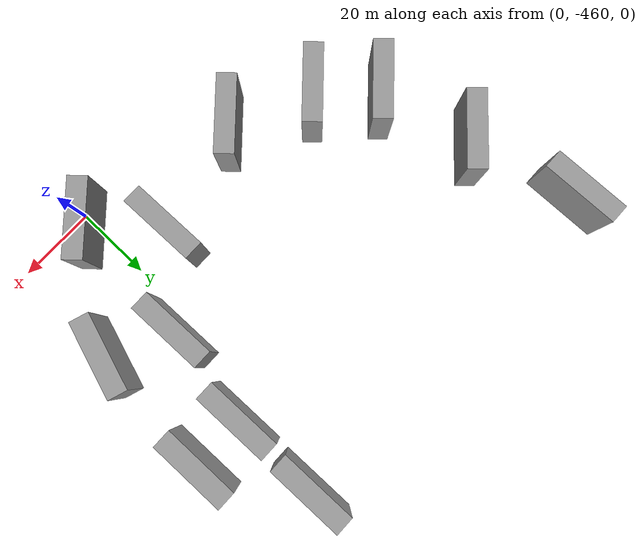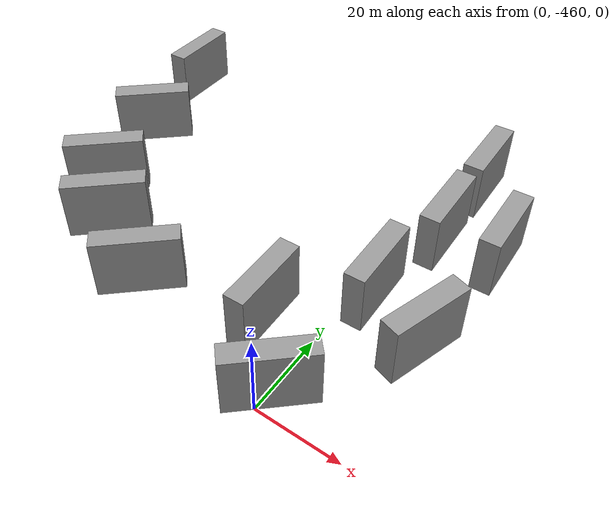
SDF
<sdf version="1.6">
 <world name="darpa_boxes">
  <model name="box_11">
   <link name="link">
    <inertial>
     <mass>1</mass>
     <inertia>
      <ixx>0.166667</ixx>
      <ixy>0</ixy>
      <ixz>0</ixz>
      <iyy>0.166667</iyy>
      <iyz>0</iyz>
      <izz>0.166667</izz>
     </inertia>
     <pose>0 0 7.5 0 -0 0</pose>
    </inertial>
    <visual name="visual">
     <geometry><box><size>5 20 15</size></box></geometry>
     <material>
      <script><name>Gazebo/Grey</name><uri>file://media/materials/scripts/gazebo.material</uri></script>
      <shader type="vertex"><normal_map>_default_</normal_map></shader>
      <ambient>0.3 0.3 0.3 1</ambient>
      <diffuse>0.7 0.7 0.7 1</diffuse>
      <specular>0.01 0.01 0.01 1</specular>
      <emissive>0 0 0 1</emissive>
     </material>
     <pose>0 0 7.5 0 -0 0</pose>
    </visual>
    <collision name="collision">
     <pose>0 0 7.5 0 -0 0</pose>
     <geometry><box><size>5 20 15</size></box></geometry>
     <surface>
      <friction>
       <ode><mu>1</mu><mu2>1</mu2><fdir1>0 0 0</fdir1><slip1>0</slip1><slip2>0</slip2></ode>
       <torsional>
        <coefficient>1</coefficient>
        <patch_radius>0</patch_radius>
        <surface_radius>0</surface_radius>
        <use_patch_radius>1</use_patch_radius>
        <ode><slip>0</slip></ode>
       </torsional>
      </friction>
      <bounce><restitution_coefficient>0</restitution_coefficient><threshold>1e+06</threshold></bounce>
      <contact>
       <collide_without_contact>0</collide_without_contact>
       <collide_without_contact_bitmask>1</collide_without_contact_bitmask>
       <collide_bitmask>1</collide_bitmask>
       <ode>
        <soft_cfm>0</soft_cfm>
        <soft_erp>0.2</soft_erp>
        <kp>1e+13</kp>
        <kd>1</kd>
        <max_vel>0.01</max_vel>
        <min_depth>0</min_depth>
       </ode>
       <bullet>
        <split_impulse>1</split_impulse>
        <split_impulse_penetration_threshold>-0.01</split_impulse_penetration_threshold>
        <soft_cfm>0</soft_cfm>
        <soft_erp>0.2</soft_erp>
        <kp>1e+13</kp>
        <kd>1</kd>
       </bullet>
      </contact>
     </surface>
    </collision>
   </link>
   <static>1</static>
   <pose>7.93072 -373.289 -0.049551 0.005047 -0.000114 0.022472</pose>
  </model>
  <model name="box_12">
   <link name="link">
    <inertial>
     <mass>1</mass>
     <inertia>
      <ixx>0.166667</ixx>
      <ixy>0</ixy>
      <ixz>0</ixz>
      <iyy>0.166667</iyy>
      <iyz>0</iyz>
      <izz>0.166667</izz>
     </inertia>
     <pose>0 0 7.5 0 -0 0</pose>
    </inertial>
    <visual name="visual">
     <geometry><box><size>5 20 15</size></box></geometry>
     <material>
      <script><name>Gazebo/Grey</name><uri>file://media/materials/scripts/gazebo.material</uri></script>
      <shader type="vertex"><normal_map>_default_</normal_map></shader>
      <ambient>0.3 0.3 0.3 1</ambient>
      <diffuse>0.7 0.7 0.7 1</diffuse>
      <specular>0.01 0.01 0.01 1</specular>
      <emissive>0 0 0 1</emissive>
     </material>
     <pose>0 0 7.5 0 -0 0</pose>
    </visual>
    <collision name="collision">
     <pose>0 0 7.5 0 -0 0</pose>
     <geometry><box><size>5 20 15</size></box></geometry>
     <surface>
      <friction>
       <ode><mu>1</mu><mu2>1</mu2><fdir1>0 0 0</fdir1><slip1>0</slip1><slip2>0</slip2></ode>
       <torsional>
        <coefficient>1</coefficient>
        <patch_radius>0</patch_radius>
        <surface_radius>0</surface_radius>
        <use_patch_radius>1</use_patch_radius>
        <ode><slip>0</slip></ode>
       </torsional>
      </friction>
      <bounce><restitution_coefficient>0</restitution_coefficient><threshold>1e+06</threshold></bounce>
      <contact>
       <collide_without_contact>0</collide_without_contact>
       <collide_without_contact_bitmask>1</collide_without_contact_bitmask>
       <collide_bitmask>1</collide_bitmask>
       <ode>
        <soft_cfm>0</soft_cfm>
        <soft_erp>0.2</soft_erp>
        <kp>1e+13</kp>
        <kd>1</kd>
        <max_vel>0.01</max_vel>
        <min_depth>0</min_depth>
       </ode>
       <bullet>
        <split_impulse>1</split_impulse>
        <split_impulse_penetration_threshold>-0.01</split_impulse_penetration_threshold>
        <soft_cfm>0</soft_cfm>
        <soft_erp>0.2</soft_erp>
        <kp>1e+13</kp>
        <kd>1</kd>
       </bullet>
      </contact>
     </surface>
    </collision>
   </link>
   <static>1</static>
   <pose>8.01915 -396.284 -0.049551 0.005047 -0.000114 0.022472</pose>
  </model>
  <model name="box_13">
   <link name="link">
    <inertial>
     <mass>1</mass>
     <inertia>
      <ixx>0.166667</ixx>
      <ixy>0</ixy>
      <ixz>0</ixz>
      <iyy>0.166667</iyy>
      <iyz>0</iyz>
      <izz>0.166667</izz>
     </inertia>
     <pose>0 0 7.5 0 -0 0</pose>
    </inertial>
    <visual name="visual">
     <geometry><box><size>5 20 15</size></box></geometry>
     <material>
      <script><name>Gazebo/Grey</name><uri>file://media/materials/scripts/gazebo.material</uri></script>
      <shader type="vertex"><normal_map>_default_</normal_map></shader>
      <ambient>0.3 0.3 0.3 1</ambient>
      <diffuse>0.7 0.7 0.7 1</diffuse>
      <specular>0.01 0.01 0.01 1</specular>
      <emissive>0 0 0 1</emissive>
     </material>
     <pose>0 0 7.5 0 -0 0</pose>
    </visual>
    <collision name="collision">
     <pose>0 0 7.5 0 -0 0</pose>
     <geometry><box><size>5 20 15</size></box></geometry>
     <surface>
      <friction>
       <ode><mu>1</mu><mu2>1</mu2><fdir1>0 0 0</fdir1><slip1>0</slip1><slip2>0</slip2></ode>
       <torsional>
        <coefficient>1</coefficient>
        <patch_radius>0</patch_radius>
        <surface_radius>0</surface_radius>
        <use_patch_radius>1</use_patch_radius>
        <ode><slip>0</slip></ode>
       </torsional>
      </friction>
      <bounce><restitution_coefficient>0</restitution_coefficient><threshold>1e+06</threshold></bounce>
      <contact>
       <collide_without_contact>0</collide_without_contact>
       <collide_without_contact_bitmask>1</collide_without_contact_bitmask>
       <collide_bitmask>1</collide_bitmask>
       <ode>
        <soft_cfm>0</soft_cfm>
        <soft_erp>0.2</soft_erp>
        <kp>1e+13</kp>
        <kd>1</kd>
        <max_vel>0.01</max_vel>
        <min_depth>0</min_depth>
       </ode>
       <bullet>
        <split_impulse>1</split_impulse>
        <split_impulse_penetration_threshold>-0.01</split_impulse_penetration_threshold>
        <soft_cfm>0</soft_cfm>
        <soft_erp>0.2</soft_erp>
        <kp>1e+13</kp>
        <kd>1</kd>
       </bullet>
      </contact>
     </surface>
    </collision>
   </link>
   <static>1</static>
   <pose>22.0679 -395.71 -0.049551 0.005047 -0.000114 0.022472</pose>
  </model>
  <model name="box_28">
   <link name="link">
    <inertial>
     <mass>1</mass>
     <inertia>
      <ixx>0.166667</ixx>
      <ixy>0</ixy>
      <ixz>0</ixz>
      <iyy>0.166667</iyy>
      <iyz>0</iyz>
      <izz>0.166667</izz>
     </inertia>
     <pose>0 0 7.5 0 -0 0</pose>
    </inertial>
    <visual name="visual">
     <geometry><box><size>5 20 15</size></box></geometry>
     <material>
      <script><name>Gazebo/Grey</name><uri>file://media/materials/scripts/gazebo.material</uri></script>
      <shader type="vertex"><normal_map>_default_</normal_map></shader>
      <ambient>0.3 0.3 0.3 1</ambient>
      <diffuse>0.7 0.7 0.7 1</diffuse>
      <specular>0.01 0.01 0.01 1</specular>
      <emissive>0 0 0 1</emissive>
     </material>
     <pose>0 0 7.5 0 -0 0</pose>
    </visual>
    <collision name="collision">
     <pose>0 0 7.5 0 -0 0</pose>
     <geometry><box><size>5 20 15</size></box></geometry>
     <surface>
      <friction>
       <ode><mu>1</mu><mu2>1</mu2><fdir1>0 0 0</fdir1><slip1>0</slip1><slip2>0</slip2></ode>
       <torsional>
        <coefficient>1</coefficient>
        <patch_radius>0</patch_radius>
        <surface_radius>0</surface_radius>
        <use_patch_radius>1</use_patch_radius>
        <ode><slip>0</slip></ode>
       </torsional>
      </friction>
      <bounce><restitution_coefficient>0</restitution_coefficient><threshold>1e+06</threshold></bounce>
      <contact>
       <collide_without_contact>0</collide_without_contact>
       <collide_without_contact_bitmask>1</collide_without_contact_bitmask>
       <collide_bitmask>1</collide_bitmask>
       <ode>
        <soft_cfm>0</soft_cfm>
        <soft_erp>0.2</soft_erp>
        <kp>1e+13</kp>
        <kd>1</kd>
        <max_vel>0.01</max_vel>
        <min_depth>0</min_depth>
       </ode>
       <bullet>
        <split_impulse>1</split_impulse>
        <split_impulse_penetration_threshold>-0.01</split_impulse_penetration_threshold>
        <soft_cfm>0</soft_cfm>
        <soft_erp>0.2</soft_erp>
        <kp>1e+13</kp>
        <kd>1</kd>
       </bullet>
      </contact>
     </surface>
    </collision>
   </link>
   <static>1</static>
   <pose>3.82121 -421.368 -0.049551 0.005047 -0.000114 0.022472</pose>
  </model>
  <model name="box_29">
   <link name="link">
    <inertial>
     <mass>1</mass>
     <inertia>
      <ixx>0.166667</ixx>
      <ixy>0</ixy>
      <ixz>0</ixz>
      <iyy>0.166667</iyy>
      <iyz>0</iyz>
      <izz>0.166667</izz>
     </inertia>
     <pose>0 0 7.5 0 -0 0</pose>
    </inertial>
    <visual name="visual">
     <geometry><box><size>5 20 15</size></box></geometry>
     <material>
      <script><name>Gazebo/Grey</name><uri>file://media/materials/scripts/gazebo.material</uri></script>
      <shader type="vertex"><normal_map>_default_</normal_map></shader>
      <ambient>0.3 0.3 0.3 1</ambient>
      <diffuse>0.7 0.7 0.7 1</diffuse>
      <specular>0.01 0.01 0.01 1</specular>
      <emissive>0 0 0 1</emissive>
     </material>
     <pose>0 0 7.5 0 -0 0</pose>
    </visual>
    <collision name="collision">
     <pose>0 0 7.5 0 -0 0</pose>
     <geometry><box><size>5 20 15</size></box></geometry>
     <surface>
      <friction>
       <ode><mu>1</mu><mu2>1</mu2><fdir1>0 0 0</fdir1><slip1>0</slip1><slip2>0</slip2></ode>
       <torsional>
        <coefficient>1</coefficient>
        <patch_radius>0</patch_radius>
        <surface_radius>0</surface_radius>
        <use_patch_radius>1</use_patch_radius>
        <ode><slip>0</slip></ode>
       </torsional>
      </friction>
      <bounce><restitution_coefficient>0</restitution_coefficient><threshold>1e+06</threshold></bounce>
      <contact>
       <collide_without_contact>0</collide_without_contact>
       <collide_without_contact_bitmask>1</collide_without_contact_bitmask>
       <collide_bitmask>1</collide_bitmask>
       <ode>
        <soft_cfm>0</soft_cfm>
        <soft_erp>0.2</soft_erp>
        <kp>1e+13</kp>
        <kd>1</kd>
        <max_vel>0.01</max_vel>
        <min_depth>0</min_depth>
       </ode>
       <bullet>
        <split_impulse>1</split_impulse>
        <split_impulse_penetration_threshold>-0.01</split_impulse_penetration_threshold>
        <soft_cfm>0</soft_cfm>
        <soft_erp>0.2</soft_erp>
        <kp>1e+13</kp>
        <kd>1</kd>
       </bullet>
      </contact>
     </surface>
    </collision>
   </link>
   <static>1</static>
   <pose>-12.4365 -440.481 -0.049551 0.005047 -0.000114 0.022472</pose>
  </model>
  <model name="box_30">
   <link name="link">
    <inertial>
     <mass>1</mass>
     <inertia>
      <ixx>0.166667</ixx>
      <ixy>0</ixy>
      <ixz>0</ixz>
      <iyy>0.166667</iyy>
      <iyz>0</iyz>
      <izz>0.166667</izz>
     </inertia>
     <pose>0 0 7.5 0 -0 0</pose>
    </inertial>
    <visual name="visual">
     <geometry><box><size>5 20 15</size></box></geometry>
     <material>
      <script><name>Gazebo/Grey</name><uri>file://media/materials/scripts/gazebo.material</uri></script>
      <shader type="vertex"><normal_map>_default_</normal_map></shader>
      <ambient>0.3 0.3 0.3 1</ambient>
      <diffuse>0.7 0.7 0.7 1</diffuse>
      <specular>0.01 0.01 0.01 1</specular>
      <emissive>0 0 0 1</emissive>
     </material>
     <pose>0 0 7.5 0 -0 0</pose>
    </visual>
    <collision name="collision">
     <pose>0 0 7.5 0 -0 0</pose>
     <geometry><box><size>5 20 15</size></box></geometry>
     <surface>
      <friction>
       <ode><mu>1</mu><mu2>1</mu2><fdir1>0 0 0</fdir1><slip1>0</slip1><slip2>0</slip2></ode>
       <torsional>
        <coefficient>1</coefficient>
        <patch_radius>0</patch_radius>
        <surface_radius>0</surface_radius>
        <use_patch_radius>1</use_patch_radius>
        <ode><slip>0</slip></ode>
       </torsional>
      </friction>
      <bounce><restitution_coefficient>0</restitution_coefficient><threshold>1e+06</threshold></bounce>
      <contact>
       <collide_without_contact>0</collide_without_contact>
       <collide_without_contact_bitmask>1</collide_without_contact_bitmask>
       <collide_bitmask>1</collide_bitmask>
       <ode>
        <soft_cfm>0</soft_cfm>
        <soft_erp>0.2</soft_erp>
        <kp>1e+13</kp>
        <kd>1</kd>
        <max_vel>0.01</max_vel>
        <min_depth>0</min_depth>
       </ode>
       <bullet>
        <split_impulse>1</split_impulse>
        <split_impulse_penetration_threshold>-0.01</split_impulse_penetration_threshold>
        <soft_cfm>0</soft_cfm>
        <soft_erp>0.2</soft_erp>
        <kp>1e+13</kp>
        <kd>1</kd>
       </bullet>
      </contact>
     </surface>
    </collision>
   </link>
   <static>1</static>
   <pose>19.3219 -428.984 -0.049551 0.004812 0.001527 -0.307324</pose>
  </model>
  <model name="box_31">
   <link name="link">
    <inertial>
     <mass>1</mass>
     <inertia>
      <ixx>0.166667</ixx>
      <ixy>0</ixy>
      <ixz>0</ixz>
      <iyy>0.166667</iyy>
      <iyz>0</iyz>
      <izz>0.166667</izz>
     </inertia>
     <pose>0 0 7.5 0 -0 0</pose>
    </inertial>
    <visual name="visual">
     <geometry><box><size>5 20 15</size></box></geometry>
     <material>
      <script><name>Gazebo/Grey</name><uri>file://media/materials/scripts/gazebo.material</uri></script>
      <shader type="vertex"><normal_map>_default_</normal_map></shader>
      <ambient>0.3 0.3 0.3 1</ambient>
      <diffuse>0.7 0.7 0.7 1</diffuse>
      <specular>0.01 0.01 0.01 1</specular>
      <emissive>0 0 0 1</emissive>
     </material>
     <pose>0 0 7.5 0 -0 0</pose>
    </visual>
    <collision name="collision">
     <pose>0 0 7.5 0 -0 0</pose>
     <geometry><box><size>5 20 15</size></box></geometry>
     <surface>
      <friction>
       <ode><mu>1</mu><mu2>1</mu2><fdir1>0 0 0</fdir1><slip1>0</slip1><slip2>0</slip2></ode>
       <torsional>
        <coefficient>1</coefficient>
        <patch_radius>0</patch_radius>
        <surface_radius>0</surface_radius>
        <use_patch_radius>1</use_patch_radius>
        <ode><slip>0</slip></ode>
       </torsional>
      </friction>
      <bounce><restitution_coefficient>0</restitution_coefficient><threshold>1e+06</threshold></bounce>
      <contact>
       <collide_without_contact>0</collide_without_contact>
       <collide_without_contact_bitmask>1</collide_without_contact_bitmask>
       <collide_bitmask>1</collide_bitmask>
       <ode>
        <soft_cfm>0</soft_cfm>
        <soft_erp>0.2</soft_erp>
        <kp>1e+13</kp>
        <kd>1</kd>
        <max_vel>0.01</max_vel>
        <min_depth>0</min_depth>
       </ode>
       <bullet>
        <split_impulse>1</split_impulse>
        <split_impulse_penetration_threshold>-0.01</split_impulse_penetration_threshold>
        <soft_cfm>0</soft_cfm>
        <soft_erp>0.2</soft_erp>
        <kp>1e+13</kp>
        <kd>1</kd>
       </bullet>
      </contact>
     </surface>
    </collision>
   </link>
   <static>1</static>
   <pose>0.847183 -455.911 -0.049551 0.003421 0.003712 -0.826352</pose>
  </model>
  <model name="box_32">
   <link name="link">
    <inertial>
     <mass>1</mass>
     <inertia>
      <ixx>0.166667</ixx>
      <ixy>0</ixy>
      <ixz>0</ixz>
      <iyy>0.166667</iyy>
      <iyz>0</iyz>
      <izz>0.166667</izz>
     </inertia>
     <pose>0 0 7.5 0 -0 0</pose>
    </inertial>
    <visual name="visual">
     <geometry><box><size>5 20 15</size></box></geometry>
     <material>
      <script><name>Gazebo/Grey</name><uri>file://media/materials/scripts/gazebo.material</uri></script>
      <shader type="vertex"><normal_map>_default_</normal_map></shader>
      <ambient>0.3 0.3 0.3 1</ambient>
      <diffuse>0.7 0.7 0.7 1</diffuse>
      <specular>0.01 0.01 0.01 1</specular>
      <emissive>0 0 0 1</emissive>
     </material>
     <pose>0 0 7.5 0 -0 0</pose>
    </visual>
    <collision name="collision">
     <pose>0 0 7.5 0 -0 0</pose>
     <geometry><box><size>5 20 15</size></box></geometry>
     <surface>
      <friction>
       <ode><mu>1</mu><mu2>1</mu2><fdir1>0 0 0</fdir1><slip1>0</slip1><slip2>0</slip2></ode>
       <torsional>
        <coefficient>1</coefficient>
        <patch_radius>0</patch_radius>
        <surface_radius>0</surface_radius>
        <use_patch_radius>1</use_patch_radius>
        <ode><slip>0</slip></ode>
       </torsional>
      </friction>
      <bounce><restitution_coefficient>0</restitution_coefficient><threshold>1e+06</threshold></bounce>
      <contact>
       <collide_without_contact>0</collide_without_contact>
       <collide_without_contact_bitmask>1</collide_without_contact_bitmask>
       <collide_bitmask>1</collide_bitmask>
       <ode>
        <soft_cfm>0</soft_cfm>
        <soft_erp>0.2</soft_erp>
        <kp>1e+13</kp>
        <kd>1</kd>
        <max_vel>0.01</max_vel>
        <min_depth>0</min_depth>
       </ode>
       <bullet>
        <split_impulse>1</split_impulse>
        <split_impulse_penetration_threshold>-0.01</split_impulse_penetration_threshold>
        <soft_cfm>0</soft_cfm>
        <soft_erp>0.2</soft_erp>
        <kp>1e+13</kp>
        <kd>1</kd>
       </bullet>
      </contact>
     </surface>
    </collision>
   </link>
   <static>1</static>
   <pose>-41.2116 -448.443 -0.049551 0.003421 0.003712 -0.826352</pose>
  </model>
  <model name="box_33">
   <link name="link">
    <inertial>
     <mass>1</mass>
     <inertia>
      <ixx>0.166667</ixx>
      <ixy>0</ixy>
      <ixz>0</ixz>
      <iyy>0.166667</iyy>
      <iyz>0</iyz>
      <izz>0.166667</izz>
     </inertia>
     <pose>0 0 7.5 0 -0 0</pose>
    </inertial>
    <visual name="visual">
     <geometry><box><size>5 20 15</size></box></geometry>
     <material>
      <script><name>Gazebo/Grey</name><uri>file://media/materials/scripts/gazebo.material</uri></script>
      <shader type="vertex"><normal_map>_default_</normal_map></shader>
      <ambient>0.3 0.3 0.3 1</ambient>
      <diffuse>0.7 0.7 0.7 1</diffuse>
      <specular>0.01 0.01 0.01 1</specular>
      <emissive>0 0 0 1</emissive>
     </material>
     <pose>0 0 7.5 0 -0 0</pose>
    </visual>
    <collision name="collision">
     <pose>0 0 7.5 0 -0 0</pose>
     <geometry><box><size>5 20 15</size></box></geometry>
     <surface>
      <friction>
       <ode><mu>1</mu><mu2>1</mu2><fdir1>0 0 0</fdir1><slip1>0</slip1><slip2>0</slip2></ode>
       <torsional>
        <coefficient>1</coefficient>
        <patch_radius>0</patch_radius>
        <surface_radius>0</surface_radius>
        <use_patch_radius>1</use_patch_radius>
        <ode><slip>0</slip></ode>
       </torsional>
      </friction>
      <bounce><restitution_coefficient>0</restitution_coefficient><threshold>1e+06</threshold></bounce>
      <contact>
       <collide_without_contact>0</collide_without_contact>
       <collide_without_contact_bitmask>1</collide_without_contact_bitmask>
       <collide_bitmask>1</collide_bitmask>
       <ode>
        <soft_cfm>0</soft_cfm>
        <soft_erp>0.2</soft_erp>
        <kp>1e+13</kp>
        <kd>1</kd>
        <max_vel>0.01</max_vel>
        <min_depth>0</min_depth>
       </ode>
       <bullet>
        <split_impulse>1</split_impulse>
        <split_impulse_penetration_threshold>-0.01</split_impulse_penetration_threshold>
        <soft_cfm>0</soft_cfm>
        <soft_erp>0.2</soft_erp>
        <kp>1e+13</kp>
        <kd>1</kd>
       </bullet>
      </contact>
     </surface>
    </collision>
   </link>
   <static>1</static>
   <pose>-61.1932 -438.844 -0.049551 0.003421 0.003712 -0.826352</pose>
  </model>
  <model name="box_67">
   <link name="link">
    <inertial>
     <mass>1</mass>
     <inertia>
      <ixx>0.166667</ixx>
      <ixy>0</ixy>
      <ixz>0</ixz>
      <iyy>0.166667</iyy>
      <iyz>0</iyz>
      <izz>0.166667</izz>
     </inertia>
     <pose>0 0 7.5 0 -0 0</pose>
    </inertial>
    <visual name="visual">
     <geometry><box><size>5 20 15</size></box></geometry>
     <material>
      <script><name>Gazebo/Grey</name><uri>file://media/materials/scripts/gazebo.material</uri></script>
      <shader type="vertex"><normal_map>_default_</normal_map></shader>
      <ambient>0.3 0.3 0.3 1</ambient>
      <diffuse>0.7 0.7 0.7 1</diffuse>
      <specular>0.01 0.01 0.01 1</specular>
      <emissive>0 0 0 1</emissive>
     </material>
     <pose>0 0 7.5 0 -0 0</pose>
    </visual>
    <collision name="collision">
     <pose>0 0 7.5 0 -0 0</pose>
     <geometry><box><size>5 20 15</size></box></geometry>
     <surface>
      <friction>
       <ode><mu>1</mu><mu2>1</mu2><fdir1>0 0 0</fdir1><slip1>0</slip1><slip2>0</slip2></ode>
       <torsional>
        <coefficient>1</coefficient>
        <patch_radius>0</patch_radius>
        <surface_radius>0</surface_radius>
        <use_patch_radius>1</use_patch_radius>
        <ode><slip>0</slip></ode>
       </torsional>
      </friction>
      <bounce><restitution_coefficient>0</restitution_coefficient><threshold>1e+06</threshold></bounce>
      <contact>
       <collide_without_contact>0</collide_without_contact>
       <collide_without_contact_bitmask>1</collide_without_contact_bitmask>
       <collide_bitmask>1</collide_bitmask>
       <ode>
        <soft_cfm>0</soft_cfm>
        <soft_erp>0.2</soft_erp>
        <kp>1e+13</kp>
        <kd>1</kd>
        <max_vel>0.01</max_vel>
        <min_depth>0</min_depth>
       </ode>
       <bullet>
        <split_impulse>1</split_impulse>
        <split_impulse_penetration_threshold>-0.01</split_impulse_penetration_threshold>
        <soft_cfm>0</soft_cfm>
        <soft_erp>0.2</soft_erp>
        <kp>1e+13</kp>
        <kd>1</kd>
       </bullet>
      </contact>
     </surface>
    </collision>
   </link>
   <static>1</static>
   <pose>-73.383 -427.245 -0.049551 0.003421 0.003712 -0.826352</pose>
  </model>
  <model name="box_34">
   <link name="link">
    <inertial>
     <mass>1</mass>
     <inertia>
      <ixx>0.166667</ixx>
      <ixy>0</ixy>
      <ixz>0</ixz>
      <iyy>0.166667</iyy>
      <iyz>0</iyz>
      <izz>0.166667</izz>
     </inertia>
     <pose>0 0 7.5 0 -0 0</pose>
    </inertial>
    <visual name="visual">
     <geometry><box><size>5 20 15</size></box></geometry>
     <material>
      <script><name>Gazebo/Grey</name><uri>file://media/materials/scripts/gazebo.material</uri></script>
      <shader type="vertex"><normal_map>_default_</normal_map></shader>
      <ambient>0.3 0.3 0.3 1</ambient>
      <diffuse>0.7 0.7 0.7 1</diffuse>
      <specular>0.01 0.01 0.01 1</specular>
      <emissive>0 0 0 1</emissive>
     </material>
     <pose>0 0 7.5 0 -0 0</pose>
    </visual>
    <collision name="collision">
     <pose>0 0 7.5 0 -0 0</pose>
     <geometry><box><size>5 20 15</size></box></geometry>
     <surface>
      <friction>
       <ode><mu>1</mu><mu2>1</mu2><fdir1>0 0 0</fdir1><slip1>0</slip1><slip2>0</slip2></ode>
       <torsional>
        <coefficient>1</coefficient>
        <patch_radius>0</patch_radius>
        <surface_radius>0</surface_radius>
        <use_patch_radius>1</use_patch_radius>
        <ode><slip>0</slip></ode>
       </torsional>
      </friction>
      <bounce><restitution_coefficient>0</restitution_coefficient><threshold>1e+06</threshold></bounce>
      <contact>
       <collide_without_contact>0</collide_without_contact>
       <collide_without_contact_bitmask>1</collide_without_contact_bitmask>
       <collide_bitmask>1</collide_bitmask>
       <ode>
        <soft_cfm>0</soft_cfm>
        <soft_erp>0.2</soft_erp>
        <kp>1e+13</kp>
        <kd>1</kd>
        <max_vel>0.01</max_vel>
        <min_depth>0</min_depth>
       </ode>
       <bullet>
        <split_impulse>1</split_impulse>
        <split_impulse_penetration_threshold>-0.01</split_impulse_penetration_threshold>
        <soft_cfm>0</soft_cfm>
        <soft_erp>0.2</soft_erp>
        <kp>1e+13</kp>
        <kd>1</kd>
       </bullet>
      </contact>
     </surface>
    </collision>
   </link>
   <static>1</static>
   <pose>-79.7195 -402.821 -0.049551 0.003421 0.003712 -0.826352</pose>
  </model>
  <model name="box_35">
   <link name="link">
    <inertial>
     <mass>1</mass>
     <inertia>
      <ixx>0.166667</ixx>
      <ixy>0</ixy>
      <ixz>0</ixz>
      <iyy>0.166667</iyy>
      <iyz>0</iyz>
      <izz>0.166667</izz>
     </inertia>
     <pose>0 0 7.5 0 -0 0</pose>
    </inertial>
    <visual name="visual">
     <geometry><box><size>5 20 15</size></box></geometry>
     <material>
      <script><name>Gazebo/Grey</name><uri>file://media/materials/scripts/gazebo.material</uri></script>
      <shader type="vertex"><normal_map>_default_</normal_map></shader>
      <ambient>0.3 0.3 0.3 1</ambient>
      <diffuse>0.7 0.7 0.7 1</diffuse>
      <specular>0.01 0.01 0.01 1</specular>
      <emissive>0 0 0 1</emissive>
     </material>
     <pose>0 0 7.5 0 -0 0</pose>
    </visual>
    <collision name="collision">
     <pose>0 0 7.5 0 -0 0</pose>
     <geometry><box><size>5 20 15</size></box></geometry>
     <surface>
      <friction>
       <ode><mu>1</mu><mu2>1</mu2><fdir1>0 0 0</fdir1><slip1>0</slip1><slip2>0</slip2></ode>
       <torsional>
        <coefficient>1</coefficient>
        <patch_radius>0</patch_radius>
        <surface_radius>0</surface_radius>
        <use_patch_radius>1</use_patch_radius>
        <ode><slip>0</slip></ode>
       </torsional>
      </friction>
      <bounce><restitution_coefficient>0</restitution_coefficient><threshold>1e+06</threshold></bounce>
      <contact>
       <collide_without_contact>0</collide_without_contact>
       <collide_without_contact_bitmask>1</collide_without_contact_bitmask>
       <collide_bitmask>1</collide_bitmask>
       <ode>
        <soft_cfm>0</soft_cfm>
        <soft_erp>0.2</soft_erp>
        <kp>1e+13</kp>
        <kd>1</kd>
        <max_vel>0.01</max_vel>
        <min_depth>0</min_depth>
       </ode>
       <bullet>
        <split_impulse>1</split_impulse>
        <split_impulse_penetration_threshold>-0.01</split_impulse_penetration_threshold>
        <soft_cfm>0</soft_cfm>
        <soft_erp>0.2</soft_erp>
        <kp>1e+13</kp>
        <kd>1</kd>
       </bullet>
      </contact>
     </surface>
    </collision>
   </link>
   <static>1</static>
   <pose>-86.7029 -375.076 -0.049551 0.005046 -0.000145 0.028592</pose>
  </model>
 </world>
</sdf>
